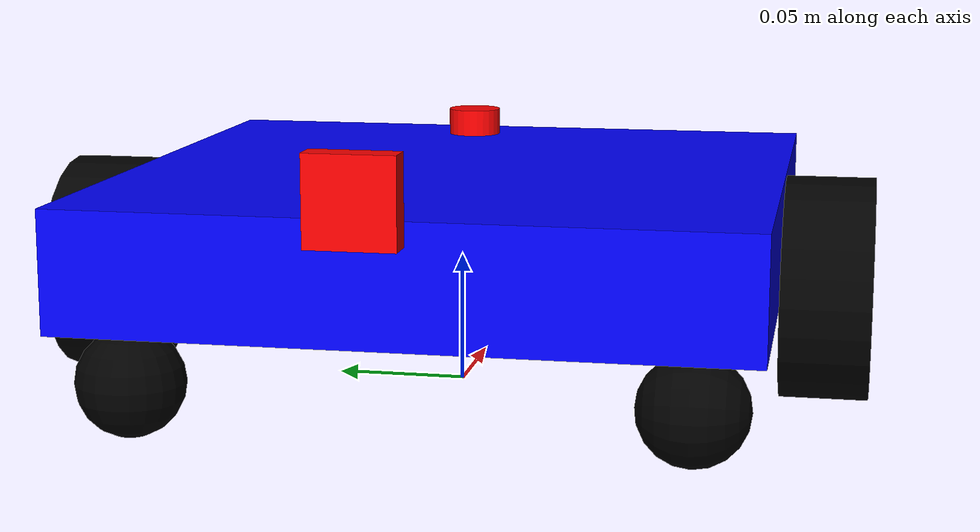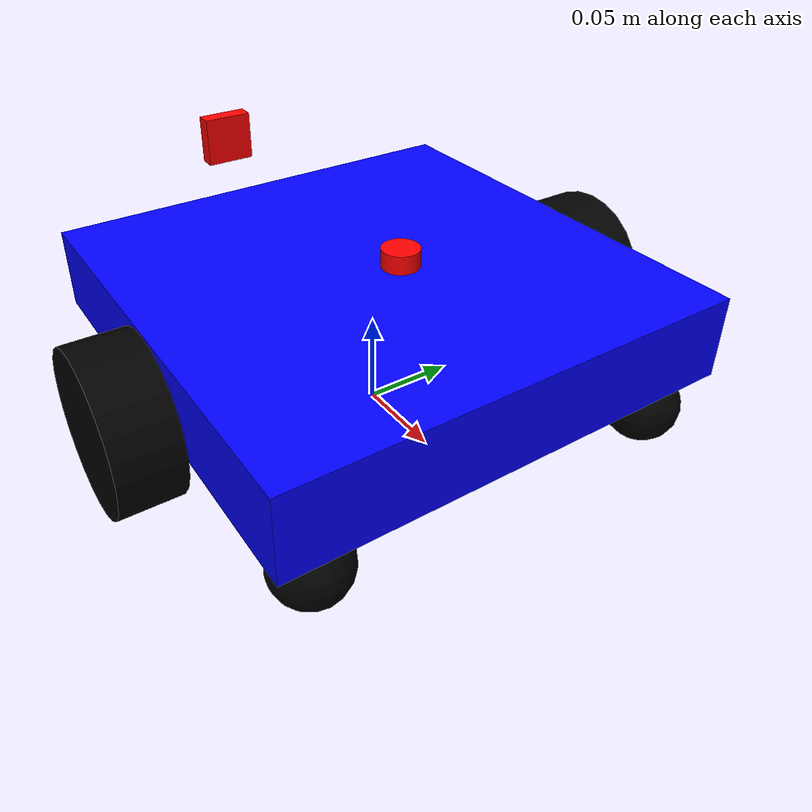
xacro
<?xml version="1.0"?>
<robot xmlns:xacro="http://www.ros.org/wiki/xacro" name="robot">

    <xacro:arg name="use_ros2_control" default="true"/>

    <xacro:include filename="robot_core.xacro"/>
    <xacro:include filename="lidar.xacro"/>
    <xacro:include filename="camera1.xacro"/>

    <xacro:if value="$(arg use_ros2_control)">
        <xacro:include filename="ros2_control.xacro"/>
    </xacro:if>
    <xacro:unless value="$(arg use_ros2_control)">
        <xacro:include filename="gazebo_control.xacro"/>
    </xacro:unless>

</robot>

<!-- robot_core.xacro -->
<robot xmlns:xacro="http://www.ros.org/wiki/xacro">

    <xacro:include filename="inertial_macros.xacro"/>

    <material name="white">
        <color rgba="1 1 1 1"/>
    </material>

    <material name="black">
        <color rgba="0 0 0 1"/>
    </material>

    <material name="red">
        <color rgba="1 0 0 1"/>
    </material>

    <material name="green">
        <color rgba="0 1 0 1"/>
    </material>

    <material name="blue">
        <color rgba="0 0 1 1"/>
    </material>

    <material name="orange">
        <color rgba="1 0.5 0 1"/>
    </material>

    <!-- Base link -->

    <link name="base_link">

    </link>

    <joint name="chassis_joint" type="fixed">
        <parent link="base_link"/>
        <child link="chassis"/>
        <origin xyz="0 0 0"/>
    </joint>

    <!-- Chassis -->
    <link name="chassis">
        <visual>
            <origin xyz="0 0 0.0625"/>
            <geometry>
                <box size="0.25 0.25 0.045"/>
            </geometry>
            <material name="blue"/>
        </visual>
        <collision>
            <origin xyz="0 0 0.0625"/>
            <geometry>
                <box size="0.25 0.25 0.045"/>
            </geometry>
        </collision>
        <xacro:inertial_box mass="0.5" x="0.25" y="0.25" z="0.045">
            <origin xyz="0 0 0.0625" rpy="0 0 0"/>
        </xacro:inertial_box>
    </link>

    <!-- Left Wheel -->
    <joint name="left_wheel_joint" type="continuous">
        <parent link="base_link"/>
        <child link="left_wheel"/>
        <origin xyz="0 0.142 0.0425" rpy="-${pi/2} 0 0"/>
        <axis xyz="0 0 -1"/>
    </joint>
    <link name="left_wheel">
        <visual>
            <geometry>
                <cylinder radius="0.0425" length="0.0334"/>
            </geometry>
            <material name="black"/>
        </visual>
        <collision>
            <geometry>
                <sphere radius="0.0425"/>
            </geometry>
        </collision>
        <xacro:inertial_cylinder mass="0.1" length="0.0334" radius="0.0425">
            <origin xyz="0 0 0" rpy="0 0 0"/>
        </xacro:inertial_cylinder>
    </link>

    <!-- Right Wheel -->
    <joint name="right_wheel_joint" type="continuous">
        <parent link="base_link"/>
        <child link="right_wheel"/>
        <origin xyz="0 -0.142 0.0425" rpy="${pi/2} 0 0"/>
        <axis xyz="0 0 1"/>
    </joint>
    <link name="right_wheel">
        <visual>
            <geometry>
                <cylinder radius="0.0425" length="0.0334"/>
            </geometry>
            <material name="black"/>
        </visual>
        <collision>
            <geometry>
                <sphere radius="0.0425"/>
            </geometry>
        </collision>
        <xacro:inertial_cylinder mass="0.1" length="0.0334" radius="0.0425">
            <origin xyz="0 0 0" rpy="0 0 0"/>
        </xacro:inertial_cylinder>
    </link>

    <gazebo reference="caster_wheel_1">
        <collision><surface><friction><ode>
            <mu>0</mu><mu2>0</mu2>
        </ode></friction></surface></collision>
    </gazebo>
    <gazebo reference="caster_wheel_2">
        <collision><surface><friction><ode>
            <mu>0</mu><mu2>0</mu2>
        </ode></friction></surface></collision>
    </gazebo>
    <gazebo reference="caster_wheel_3">
        <collision><surface><friction><ode>
            <mu>0</mu><mu2>0</mu2>
        </ode></friction></surface></collision>
    </gazebo>
    <gazebo reference="caster_wheel_4">
        <collision><surface><friction><ode>
            <mu>0</mu><mu2>0</mu2>
        </ode></friction></surface></collision>
    </gazebo>

    <!-- Caster Wheel 1-->
    <joint name="caster_wheel_1_joint" type="fixed">
    <parent link="chassis"/>
    <child link="caster_wheel_1"/>
    <origin xyz="0.105 0.1 0.02" rpy="0 0 0"/>
    </joint>

    <link name="caster_wheel_1">
        <visual>
            <geometry>
                <sphere radius="0.02"/>
            </geometry>
            <material name="black"/>
        </visual>
        <collision>
            <geometry>
                <sphere radius="0.02"/>
            </geometry>
        </collision>
        <xacro:inertial_sphere mass="0.1" radius="0.02">
            <origin xyz="0 0 0" rpy="0 0 0"/>
        </xacro:inertial_sphere>
    </link>

    <!-- Caster Wheel 2-->
    <joint name="caster_wheel_2_joint" type="fixed">
    <parent link="chassis"/>
    <child link="caster_wheel_2"/>
    <origin xyz="0.105 -0.1 0.02" rpy="${pi/2} 0 0"/>
    </joint>

    <link name="caster_wheel_2">
        <visual>
            <geometry>
                <sphere radius="0.02"/>
            </geometry>
            <material name="black"/>
        </visual>
        <collision>
            <geometry>
                <sphere radius="0.02"/>
            </geometry>
        </collision>
            <xacro:inertial_sphere mass="0.1" radius="0.02">
            <origin xyz="0 0 0" rpy="0 0 0"/>
        </xacro:inertial_sphere>
    </link>

    <!-- Caster Wheel 3 (Back Left) -->
<joint name="caster_wheel_3_joint" type="fixed">
    <parent link="chassis"/>
    <child link="caster_wheel_3"/>
    <origin xyz="-0.105 0.1 0.02" rpy="0 0 0"/>
</joint>

<link name="caster_wheel_3">
    <visual>
        <geometry>
            <sphere radius="0.02"/>
        </geometry>
        <material name="black"/>
    </visual>
    <collision>
        <geometry>
            <sphere radius="0.02"/>
        </geometry>
    </collision>
    <xacro:inertial_sphere mass="0.1" radius="0.02">
        <origin xyz="0 0 0" rpy="0 0 0"/>
    </xacro:inertial_sphere>
</link>

<!-- Caster Wheel 4 (Back Right) -->
<joint name="caster_wheel_4_joint" type="fixed">
    <parent link="chassis"/>
    <child link="caster_wheel_4"/>
    <origin xyz="-0.105 -0.1 0.02" rpy="${pi/2} 0 0"/>
</joint>

<link name="caster_wheel_4">
    <visual>
        <geometry>
            <sphere radius="0.02"/>
        </geometry>
        <material name="black"/>
    </visual>
    <collision>
        <geometry>
            <sphere radius="0.02"/>
        </geometry>
    </collision>
    <xacro:inertial_sphere mass="0.1" radius="0.02">
        <origin xyz="0 0 0" rpy="0 0 0"/>
    </xacro:inertial_sphere>
</link>

</robot>

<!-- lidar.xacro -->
<robot xmlns:xacro="http://www.ros.org/wiki/xacro" >

    <joint name="laser_joint" type="fixed">
        <parent link="chassis"/>
        <child link="laser_frame"/>
        <origin xyz="0.025 0 0.1" rpy="0 0 0"/>
    </joint>

    <link name="laser_frame">
        <visual>
            <geometry>
                <cylinder radius="0.01" length="0.01"/>
            </geometry>
            <material name="red"/>
        </visual>
        <collision>
            <geometry>
                <cylinder radius="0.01" length="0.01"/>
            </geometry>
        </collision>
        <xacro:inertial_cylinder mass="0.1" length="0.01" radius="0.01">
            <origin xyz="0 0 0" rpy="0 0 0"/>
        </xacro:inertial_cylinder>
    </link>

    <gazebo reference="laser_frame">
        <sensor name="laser" type="gpu_lidar">
            <topic>scan</topic>
            <update_rate>10</update_rate>
            <lidar>
                <scan>
                    <horizontal>
                        <samples>360</samples>
                        <resolution>1</resolution>
                        <min_angle>-3.14159</min_angle>
                        <max_angle>3.14159</max_angle>
                    </horizontal>
                </scan>
                <range>
                    <min>0.3</min>
                    <max>12</max>
                    <resolution>0.01</resolution>
                </range>
            </lidar>
            <gz_frame_id>laser_frame</gz_frame_id>
            <visualize>false</visualize>
        </sensor>
    </gazebo>

</robot>

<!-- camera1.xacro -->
<robot xmlns:xacro="http://www.ros.org/wiki/xacro">

    <joint name="camera_joint" type="fixed">
        <parent link="chassis"/>
        <child link="camera_link"/>
        <origin xyz="-0.175 0 0.1" rpy="0 0 ${pi}"/>
    </joint>

    <link name="camera_link">
        <visual>
            <geometry>
                <box size="0.01 0.03 0.03"/>
            </geometry>
            <material name="red"/>
        </visual>
    </link>

    <joint name="camera_optical_joint" type="fixed">
        <parent link="camera_link"/>
        <child link="camera_link_optical"/>
        <origin xyz="0 0 0" rpy="${-pi/2} 0 ${-pi/2}"/>
    </joint>

    <link name="camera_link_optical"/>

    <gazebo reference="camera_link">
        <sensor name="camera" type="camera">
            <topic>camera</topic>
            <update_rate>10</update_rate>
            <always_on>true</always_on>
            <camera>
                <horizontal_fov>1.047</horizontal_fov>
                <image>
                    <width>640</width>
                    <height>480</height>
                </image>
                <clip>
                    <near>0.1</near>
                    <far>100</far>
                </clip>
            </camera>
            <gz_frame_id>camera_link_optical</gz_frame_id>
            <visualize>false</visualize>
        </sensor>
    </gazebo>

</robot>
